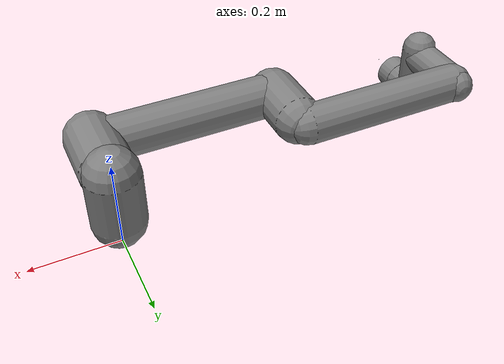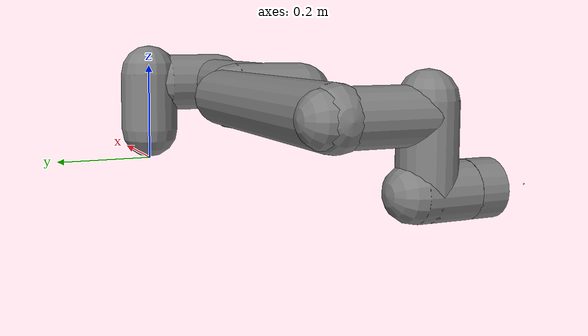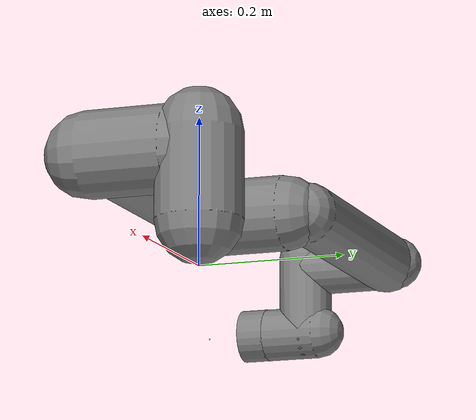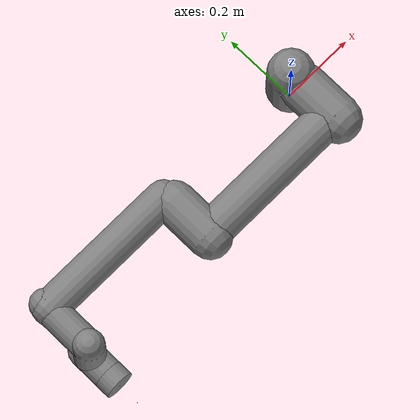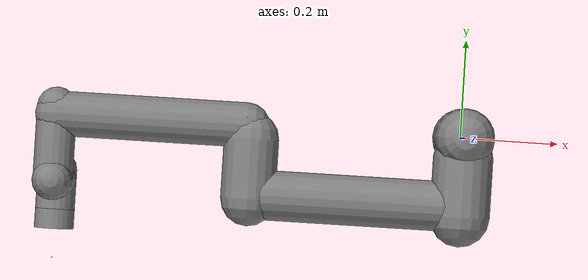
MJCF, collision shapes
<mujoco model="ur5e">
  <!-- Universal Robots UR5e (6-DoF collaborative arm) for MuJoCo. -->
  <compiler angle="radian" meshdir="meshes" autolimits="true"/>

  <default>
    <default class="ur5e">
      <material specular="0.5" shininess="0.25"/>
      <joint axis="0 1 0" range="-6.28319 6.28319" armature="0.1"/>
      <general gaintype="fixed" biastype="affine" ctrlrange="-6.2831 6.2831"
               gainprm="2000" biasprm="0 -2000 -400" forcerange="-120 120"/>
      <default class="size3">
        <default class="size3_limited">
          <joint range="-3.1415 3.1415"/>
          <general ctrlrange="-3.1415 3.1415"/>
        </default>
      </default>
      <default class="size1">
        <general gainprm="2000" biasprm="0 -2000 -500" forcerange="-28 28"/>
      </default>
      <default class="visual">
        <geom type="mesh" contype="0" conaffinity="0" group="2"/>
      </default>
      <default class="collision">
        <geom type="capsule" group="3"/>
        <default class="eef_collision">
          <geom type="cylinder"/>
        </default>
      </default>
      <site size="0.001" rgba="0.5 0.5 0.5 0.3" group="4"/>
    </default>
  </default>

  <asset>
    <material class="ur5e" name="black" rgba="0.033 0.033 0.033 1"/>
    <material class="ur5e" name="jointgray" rgba="0.278 0.278 0.278 1"/>
    <material class="ur5e" name="linkgray" rgba="0.82 0.82 0.82 1"/>
    <material class="ur5e" name="urblue" rgba="0.49 0.678 0.8 1"/>

    <mesh file="base_0.obj"/>
    <mesh file="base_1.obj"/>
    <mesh file="shoulder_0.obj"/>
    <mesh file="shoulder_1.obj"/>
    <mesh file="shoulder_2.obj"/>
    <mesh file="upperarm_0.obj"/>
    <mesh file="upperarm_1.obj"/>
    <mesh file="upperarm_2.obj"/>
    <mesh file="upperarm_3.obj"/>
    <mesh file="forearm_0.obj"/>
    <mesh file="forearm_1.obj"/>
    <mesh file="forearm_2.obj"/>
    <mesh file="forearm_3.obj"/>
    <mesh file="wrist1_0.obj"/>
    <mesh file="wrist1_1.obj"/>
    <mesh file="wrist1_2.obj"/>
    <mesh file="wrist2_0.obj"/>
    <mesh file="wrist2_1.obj"/>
    <mesh file="wrist2_2.obj"/>
    <mesh file="wrist3.obj"/>

    <mesh file="fts_robot_adapter.obj" scale="0.001 0.001 0.001"/>
    <mesh file="fts_axia80.obj" scale="0.001 0.001 0.001"/>
    <mesh file="fts_tool_adapter.obj" scale="0.001 0.001 0.001"/>
  </asset>

  <worldbody>
    <body name="base" quat="0 0 0 -1" childclass="ur5e">
      <inertial mass="4.0" pos="0 0 0" diaginertia="0.00443333156 0.00443333156 0.0072"/>
      <geom mesh="base_0" material="black" class="visual"/>
      <geom mesh="base_1" material="jointgray" class="visual"/>
      <body name="shoulder_link" pos="0 0 0.1625">
        <inertial mass="3.7" pos="0 0 0" diaginertia="0.0102675 0.0102675 0.00666"/>
        <joint name="shoulder_pan_joint" class="size3" axis="0 0 1"/>
        <geom mesh="shoulder_0" material="urblue" class="visual"/>
        <geom mesh="shoulder_1" material="black" class="visual"/>
        <geom mesh="shoulder_2" material="jointgray" class="visual"/>
        <geom class="collision" size="0.06 0.06" pos="0 0 -0.04"/>
        <body name="upper_arm_link" pos="0.0 0.138 0" quat="1 0 1 0">
          <inertial mass="8.393" pos="0 0 0.2125" diaginertia="0.133886 0.133886 0.0151074"/>
          <joint name="shoulder_lift_joint" class="size3"/>
          <geom mesh="upperarm_0" material="linkgray" class="visual"/>
          <geom mesh="upperarm_1" material="black" class="visual"/>
          <geom mesh="upperarm_2" material="jointgray" class="visual"/>
          <geom mesh="upperarm_3" material="urblue" class="visual"/>
          <geom class="collision" pos="0 -0.04 0" quat="1 1 0 0" size="0.06 0.06"/>
          <geom class="collision" size="0.05 0.2" pos="0 0 0.2"/>
          <body name="forearm_link" pos="0 -0.138 0.425">
            <inertial mass="2.275" pos="0 0 0.196" diaginertia="0.0311796 0.0311796 0.004095"/>
            <joint name="elbow_joint" class="size3_limited"/>
            <geom mesh="forearm_0" pos="0 0.007 0" material="urblue" class="visual"/>
            <geom mesh="forearm_1" pos="0 0.007 0" material="linkgray" class="visual"/>
            <geom mesh="forearm_2" pos="0 0.007 0" material="black" class="visual"/>
            <geom mesh="forearm_3" pos="0 0.007 0" material="jointgray" class="visual"/>
            <geom class="collision" pos="0 0.087 0" quat="1 1 0 0" size="0.055 0.06"/>
            <geom class="collision" size="0.045 0.19" pos="0 0 0.2"/>
            <body name="wrist_1_link" pos="0 0 0.3922" quat="1 0 1 0">
              <inertial mass="1.219" pos="0 0.127 0" diaginertia="0.0025599 0.0025599 0.0021942"/>
              <joint name="wrist_1_joint" class="size1"/>
              <geom mesh="wrist1_0" pos="0 0.007 0" material="black" class="visual"/>
              <geom mesh="wrist1_1" pos="0 0.007 0" material="urblue" class="visual"/>
              <geom mesh="wrist1_2" pos="0 0.007 0" material="jointgray" class="visual"/>
              <geom class="collision" pos="0 0.057 0" quat="1 1 0 0" size="0.04 0.07"/>
              <body name="wrist_2_link" pos="0 0.1333 0">
                <inertial mass="1.219" pos="0 0 0.1" diaginertia="0.0025599 0.0025599 0.0021942"/>
                <joint name="wrist_2_joint" axis="0 0 1" class="size1"/>
                <geom mesh="wrist2_0" material="black" class="visual"/>
                <geom mesh="wrist2_1" material="urblue" class="visual"/>
                <geom mesh="wrist2_2" material="jointgray" class="visual"/>
                <geom class="collision" size="0.04 0.06" pos="0 0 0.04"/>
                <geom class="collision" pos="0 0.02 0.1" quat="1 1 0 0" size="0.04 0.04"/>
                <body name="wrist_3_link" pos="0 0 0.0997">
                  <inertial mass="0.1889" pos="0 0.0771683 0" quat="1 0 0 1"
                    diaginertia="0.000132134 9.90863e-05 9.90863e-05"/>
                  <joint name="wrist_3_joint" class="size1"/>
                  <geom material="linkgray" mesh="wrist3" class="visual"/>
                  <geom class="eef_collision" pos="0 0.08 0" quat="1 1 0 0" size="0.04 0.02"/>
                  <site name="attachment_site" pos="0 0.1 0" quat="-1 1 0 0"/>
                  <body name="tool0" pos="0 0.1 0" quat="-1 1 0 0">
                    <inertial mass="0.3" pos="0 0 0.04" diaginertia="0.0003 0.0003 0.0004"/>
                    <camera name="tool_cam" fovy="42" pos="-0.0375 -0.111 0.005" euler="2.3561945 0 0"/>
                    <site name="tool0_site" pos="0 0 0" group="1"/>
                    <site name="fts_site" size="0.001 0.001 0.001" pos="0 0 0.04" rgba="0 1 0 1" group="4"/>
                    <site name="tool_site" pos="0 0 0.059" group="1"/>
                    <geom material="linkgray" mass="0.00001" class="visual" mesh="fts_robot_adapter"
                          pos="0 0 0.020" quat="0 0 -0.7071068 0.7071068"/>
                    <geom material="linkgray" mass="0.00001" class="visual" mesh="fts_axia80"
                          pos="0 0 0.045" quat="0 0 -0.7071068 0.7071068"/>
                    <geom material="linkgray" mass="0.00001" class="visual" mesh="fts_tool_adapter"
                          pos="0 0 0.059" quat="0 -0.7071068 0 0.7071068"/>
                  </body>
                </body>
              </body>
            </body>
          </body>
        </body>
      </body>
    </body>
  </worldbody>

  <actuator>
    <general class="size3" name="shoulder_pan" joint="shoulder_pan_joint"/>
    <general class="size3" name="shoulder_lift" joint="shoulder_lift_joint"/>
    <general class="size3_limited" name="elbow" joint="elbow_joint"/>
    <general class="size1" name="wrist_1" joint="wrist_1_joint"/>
    <general class="size1" name="wrist_2" joint="wrist_2_joint"/>
    <general class="size1" name="wrist_3" joint="wrist_3_joint"/>
  </actuator>

  <contact>
    <!-- The flange and the tool assembly interpenetrate by construction. Without this exclude the
         FT sensor reads a constant self-contact wrench and every force metric is offset. -->
    <exclude name="flange_fts" body1="wrist_3_link" body2="tool0"/>
  </contact>

  <!-- home pose is applied by the spawn_arm plugin (config: home), not a keyframe,
       so the model attaches cleanly into a larger scene spec. -->
</mujoco>
